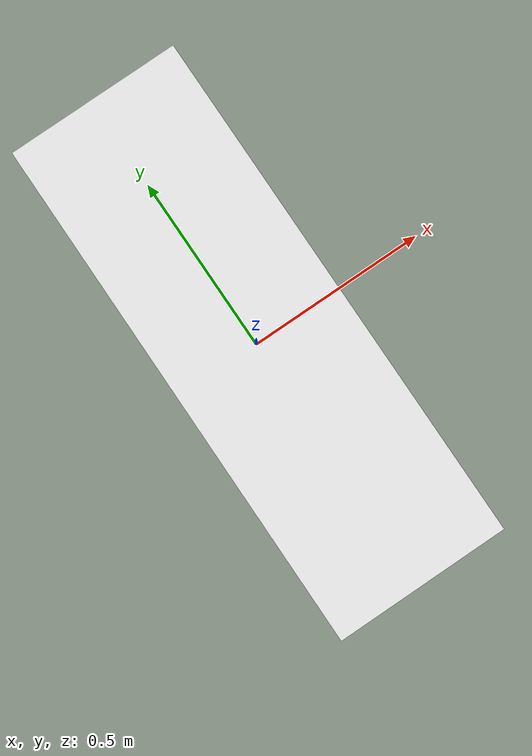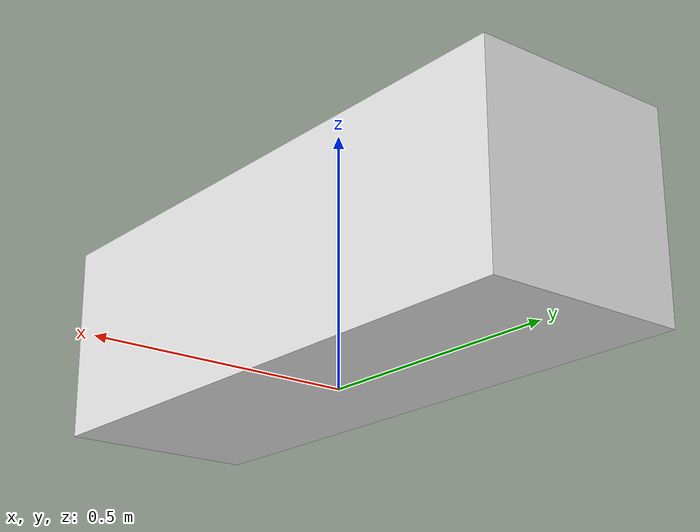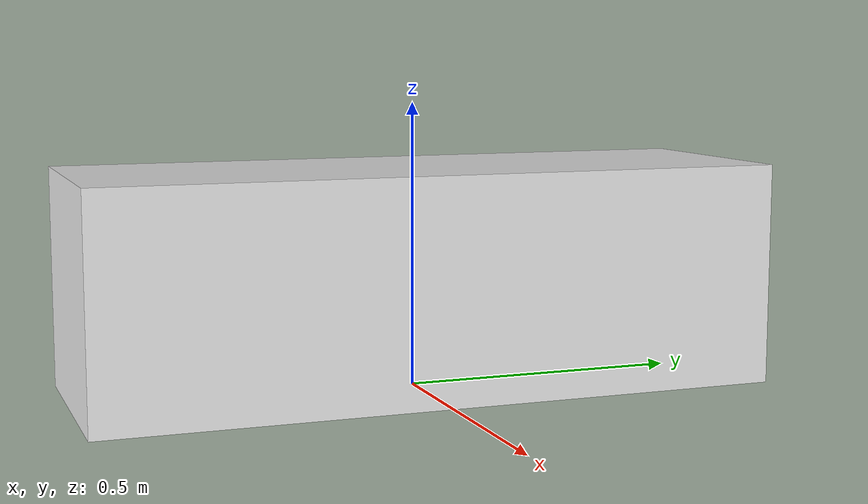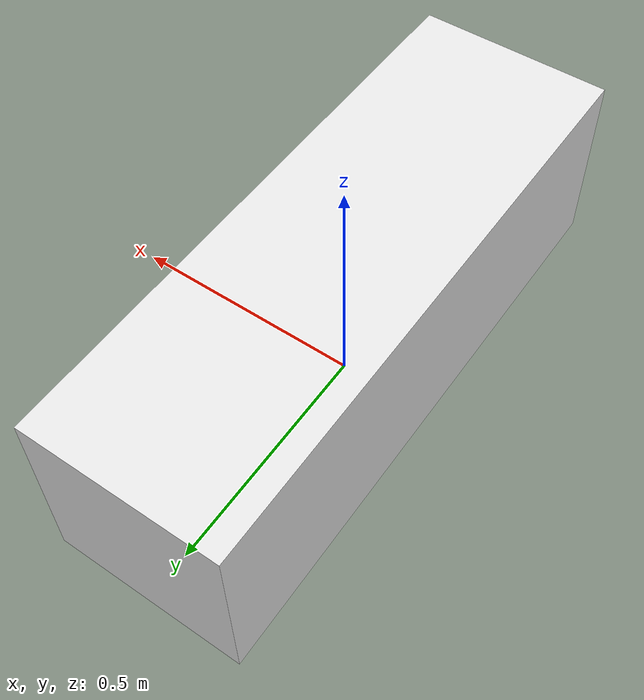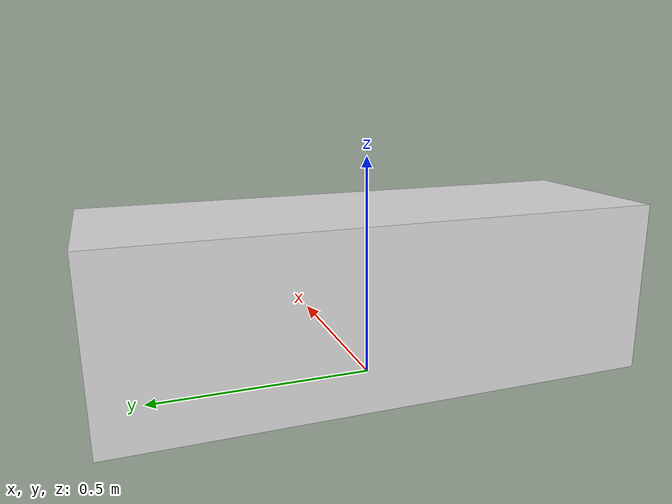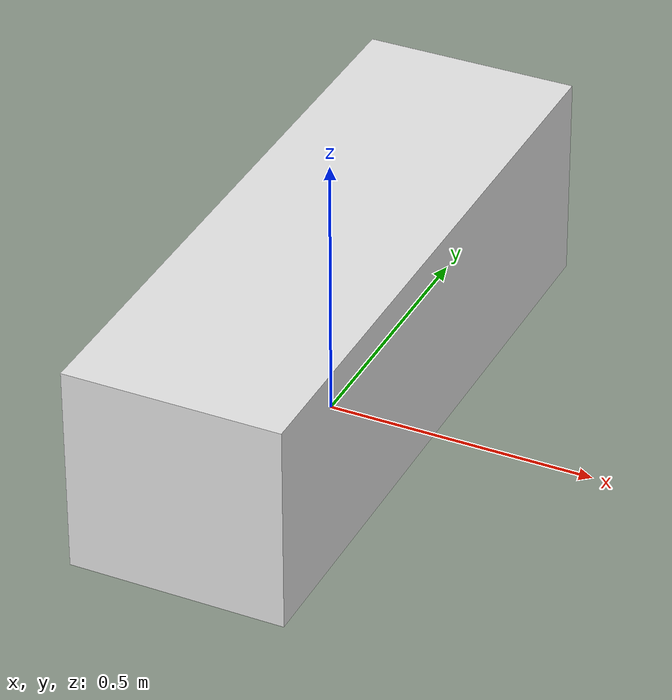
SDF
<?xml version="1.0"?>
<sdf version="1.6">
  <model name="rwc2015/old/tv_stand">
    <link name="1_link">
      <collision name="1_col">
        <geometry>
          <box>
            <size>0.4 1.2 0.39</size>
          </box>
        </geometry>
      </collision>
      <visual name="1_vis">
        <geometry>
          <box>
            <size>0.4 1.2 0.39</size>
          </box>
        </geometry>
        <material>
          <ambient>0.9 0.9 0.9 1</ambient>
        </material>
      </visual>
      <pose>0.0 0.0 0.195 0 0 0</pose>
    </link>
    <static>true</static>
  </model>
</sdf>
